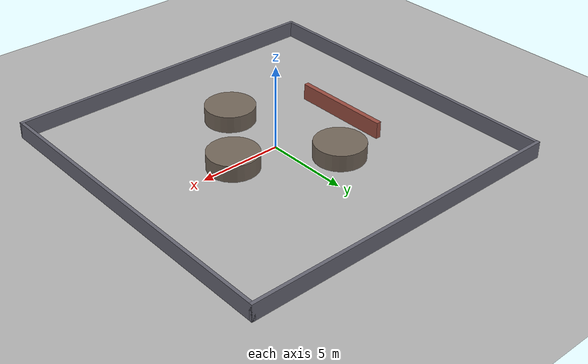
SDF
<?xml version="1.0" ?>
<sdf version="1.9">
  <world name="course">

    <!-- ================= Simulation settings ================= -->
    <physics name="1ms" type="ignored">
      <max_step_size>0.001</max_step_size>
      <real_time_factor>1.0</real_time_factor>
    </physics>

    <plugin filename="gz-sim-physics-system" name="gz::sim::systems::Physics"/>
    <plugin filename="gz-sim-user-commands-system" name="gz::sim::systems::UserCommands"/>
    <plugin filename="gz-sim-scene-broadcaster-system" name="gz::sim::systems::SceneBroadcaster"/>
    <!-- Required for the lidar to publish anything -->
    <plugin filename="gz-sim-sensors-system" name="gz::sim::systems::Sensors">
      <render_engine>ogre2</render_engine>
    </plugin>

    <scene>
      <ambient>0.6 0.6 0.6 1</ambient>
      <background>0.75 0.8 0.9 1</background>
      <grid>true</grid>
    </scene>

    <light type="directional" name="sun">
      <cast_shadows>true</cast_shadows>
      <pose>0 0 10 0 0 0</pose>
      <diffuse>0.8 0.8 0.8 1</diffuse>
      <specular>0.2 0.2 0.2 1</specular>
      <direction>-0.5 0.1 -0.9</direction>
    </light>

    <!-- ================= Ground ================= -->
    <model name="ground_plane">
      <static>true</static>
      <link name="link">
        <collision name="collision">
          <geometry><plane><normal>0 0 1</normal><size>40 40</size></plane></geometry>
        </collision>
        <visual name="visual">
          <geometry><plane><normal>0 0 1</normal><size>40 40</size></plane></geometry>
          <material>
            <ambient>0.7 0.7 0.7 1</ambient>
            <diffuse>0.7 0.7 0.7 1</diffuse>
          </material>
        </visual>
      </link>
    </model>

    <!-- ================= Boundary walls ================= -->
    <model name="wall_north">
      <static>true</static>
      <pose>0 10 0.5 0 0 0</pose>
      <link name="link">
        <collision name="c"><geometry><box><size>20.2 0.2 1</size></box></geometry></collision>
        <visual name="v"><geometry><box><size>20.2 0.2 1</size></box></geometry>
          <material><ambient>0.4 0.4 0.45 1</ambient><diffuse>0.4 0.4 0.45 1</diffuse></material></visual>
      </link>
    </model>

    <model name="wall_south">
      <static>true</static>
      <pose>0 -10 0.5 0 0 0</pose>
      <link name="link">
        <collision name="c"><geometry><box><size>20.2 0.2 1</size></box></geometry></collision>
        <visual name="v"><geometry><box><size>20.2 0.2 1</size></box></geometry>
          <material><ambient>0.4 0.4 0.45 1</ambient><diffuse>0.4 0.4 0.45 1</diffuse></material></visual>
      </link>
    </model>

    <model name="wall_east">
      <static>true</static>
      <pose>10 0 0.5 0 0 0</pose>
      <link name="link">
        <collision name="c"><geometry><box><size>0.2 20.2 1</size></box></geometry></collision>
        <visual name="v"><geometry><box><size>0.2 20.2 1</size></box></geometry>
          <material><ambient>0.4 0.4 0.45 1</ambient><diffuse>0.4 0.4 0.45 1</diffuse></material></visual>
      </link>
    </model>

    <model name="wall_west">
      <static>true</static>
      <pose>-10 0 0.5 0 0 0</pose>
      <link name="link">
        <collision name="c"><geometry><box><size>0.2 20.2 1</size></box></geometry></collision>
        <visual name="v"><geometry><box><size>0.2 20.2 1</size></box></geometry>
          <material><ambient>0.4 0.4 0.45 1</ambient><diffuse>0.4 0.4 0.45 1</diffuse></material></visual>
      </link>
    </model>

    <!-- ================= Obstacles ================= -->
    <model name="boulder_1">
      <static>true</static>
      <pose>3 0 0.5 0 0 0</pose>
      <link name="link">
        <collision name="c"><geometry><cylinder><radius>1.5</radius><length>1</length></cylinder></geometry></collision>
        <visual name="v"><geometry><cylinder><radius>1.5</radius><length>1</length></cylinder></geometry>
          <material><ambient>0.45 0.4 0.35 1</ambient><diffuse>0.45 0.4 0.35 1</diffuse></material></visual>
      </link>
    </model>

    <model name="boulder_2">
      <static>true</static>
      <pose>-2 3 0.5 0 0 0</pose>
      <link name="link">
        <collision name="c"><geometry><cylinder><radius>1.5</radius><length>1</length></cylinder></geometry></collision>
        <visual name="v"><geometry><cylinder><radius>1.5</radius><length>1</length></cylinder></geometry>
          <material><ambient>0.45 0.4 0.35 1</ambient><diffuse>0.45 0.4 0.35 1</diffuse></material></visual>
      </link>
    </model>

    <model name="boulder_3">
      <static>true</static>
      <pose>0 -4 0.5 0 0 0</pose>
      <link name="link">
        <collision name="c"><geometry><cylinder><radius>1.5</radius><length>1</length></cylinder></geometry></collision>
        <visual name="v"><geometry><cylinder><radius>1.5</radius><length>1</length></cylinder></geometry>
          <material><ambient>0.45 0.4 0.35 1</ambient><diffuse>0.45 0.4 0.35 1</diffuse></material></visual>
      </link>
    </model>

    <model name="inner_wall">
      <static>true</static>
      <pose>-5 0 0.5 0 0 0</pose>
      <link name="link">
        <collision name="c"><geometry><box><size>0.3 6 1</size></box></geometry></collision>
        <visual name="v"><geometry><box><size>0.3 6 1</size></box></geometry>
          <material><ambient>0.6 0.3 0.25 1</ambient><diffuse>0.6 0.3 0.25 1</diffuse></material></visual>
      </link>
    </model>

    <!-- ================= Vehicle ================= -->
    <!-- Spawned by sim.launch.py -->
  </world>
</sdf>
